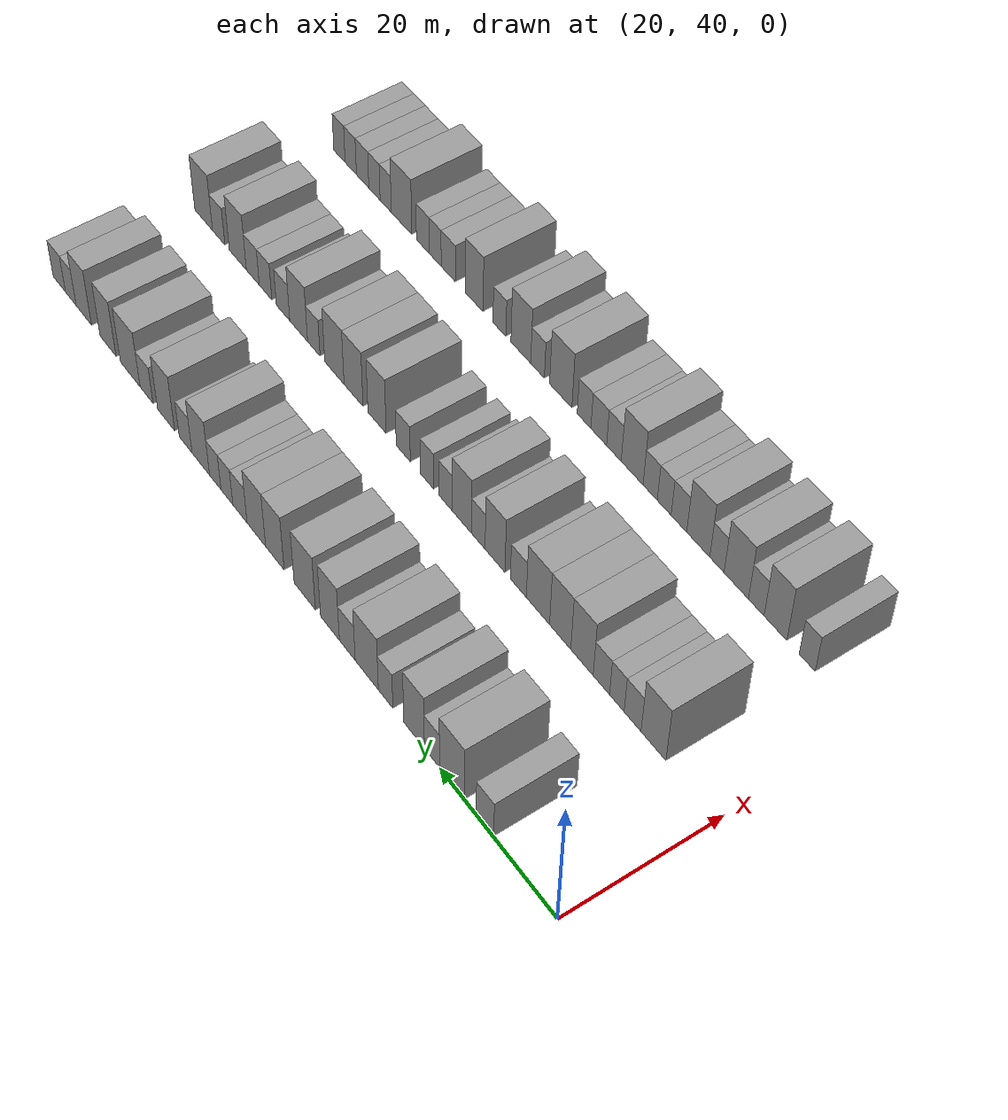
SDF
<sdf version="1.6">
 <world name="default">
  <model name="building_74">
   <static>1</static>
   <pose>25.0000 52.1998 0 0.000000 0.000000 0.000000</pose>
   <link name="link">
    <pose>0 0 3.00 0 0 0</pose>
    <collision name="collision"><geometry><box><size>10.0000 2.9904 6.0000</size></box></geometry></collision>
    <visual name="visual">
     <cast_shadows>0</cast_shadows>
     <geometry><box><size>10.0000 2.9904 6.0000</size></box></geometry>
     <material>
      <script>
       <uri>model://grey_wall/materials/scripts</uri>
       <uri>model://grey_wall/materials/textures</uri>
       <name>vrc/grey_wall</name>
      </script>
     </material>
    </visual>
   </link>
  </model>
  <model name="building_75">
   <static>1</static>
   <pose>25.0000 57.8810 0 0.000000 0.000000 0.000000</pose>
   <link name="link">
    <pose>0 0 4.50 0 0 0</pose>
    <collision name="collision"><geometry><box><size>10.0000 4.3721 9.0000</size></box></geometry></collision>
    <visual name="visual">
     <cast_shadows>0</cast_shadows>
     <geometry><box><size>10.0000 4.3721 9.0000</size></box></geometry>
     <material>
      <script>
       <uri>model://grey_wall/materials/scripts</uri>
       <uri>model://grey_wall/materials/textures</uri>
       <name>vrc/grey_wall</name>
      </script>
     </material>
    </visual>
   </link>
  </model>
  <model name="building_76">
   <static>1</static>
   <pose>25.0000 61.4075 0 0.000000 0.000000 0.000000</pose>
   <link name="link">
    <pose>0 0 3.00 0 0 0</pose>
    <collision name="collision"><geometry><box><size>10.0000 2.6810 6.0000</size></box></geometry></collision>
    <visual name="visual">
     <cast_shadows>0</cast_shadows>
     <geometry><box><size>10.0000 2.6810 6.0000</size></box></geometry>
     <material>
      <script>
       <uri>model://grey_wall/materials/scripts</uri>
       <uri>model://grey_wall/materials/textures</uri>
       <name>vrc/grey_wall</name>
      </script>
     </material>
    </visual>
   </link>
  </model>
  <model name="building_77">
   <static>1</static>
   <pose>25.0000 64.5982 0 0.000000 0.000000 0.000000</pose>
   <link name="link">
    <pose>0 0 4.50 0 0 0</pose>
    <collision name="collision"><geometry><box><size>10.0000 3.7004 9.0000</size></box></geometry></collision>
    <visual name="visual">
     <cast_shadows>0</cast_shadows>
     <geometry><box><size>10.0000 3.7004 9.0000</size></box></geometry>
     <material>
      <script>
       <uri>model://grey_wall/materials/scripts</uri>
       <uri>model://grey_wall/materials/textures</uri>
       <name>vrc/grey_wall</name>
      </script>
     </material>
    </visual>
   </link>
  </model>
  <model name="building_78">
   <static>1</static>
   <pose>25.0000 69.7777 0 0.000000 0.000000 0.000000</pose>
   <link name="link">
    <pose>0 0 3.00 0 0 0</pose>
    <collision name="collision"><geometry><box><size>10.0000 2.6587 6.0000</size></box></geometry></collision>
    <visual name="visual">
     <cast_shadows>0</cast_shadows>
     <geometry><box><size>10.0000 2.6587 6.0000</size></box></geometry>
     <material>
      <script>
       <uri>model://grey_wall/materials/scripts</uri>
       <uri>model://grey_wall/materials/textures</uri>
       <name>vrc/grey_wall</name>
      </script>
     </material>
    </visual>
   </link>
  </model>
  <model name="building_79">
   <static>1</static>
   <pose>25.0000 73.2680 0 0.000000 0.000000 0.000000</pose>
   <link name="link">
    <pose>0 0 4.50 0 0 0</pose>
    <collision name="collision"><geometry><box><size>10.0000 4.3219 9.0000</size></box></geometry></collision>
    <visual name="visual">
     <cast_shadows>0</cast_shadows>
     <geometry><box><size>10.0000 4.3219 9.0000</size></box></geometry>
     <material>
      <script>
       <uri>model://grey_wall/materials/scripts</uri>
       <uri>model://grey_wall/materials/textures</uri>
       <name>vrc/grey_wall</name>
      </script>
     </material>
    </visual>
   </link>
  </model>
  <model name="building_80">
   <static>1</static>
   <pose>25.0000 76.9229 0 0.000000 0.000000 0.000000</pose>
   <link name="link">
    <pose>0 0 3.00 0 0 0</pose>
    <collision name="collision"><geometry><box><size>10.0000 2.9879 6.0000</size></box></geometry></collision>
    <visual name="visual">
     <cast_shadows>0</cast_shadows>
     <geometry><box><size>10.0000 2.9879 6.0000</size></box></geometry>
     <material>
      <script>
       <uri>model://grey_wall/materials/scripts</uri>
       <uri>model://grey_wall/materials/textures</uri>
       <name>vrc/grey_wall</name>
      </script>
     </material>
    </visual>
   </link>
  </model>
  <model name="building_81">
   <static>1</static>
   <pose>25.0000 80.2235 0 0.000000 0.000000 0.000000</pose>
   <link name="link">
    <pose>0 0 4.50 0 0 0</pose>
    <collision name="collision"><geometry><box><size>10.0000 3.6132 9.0000</size></box></geometry></collision>
    <visual name="visual">
     <cast_shadows>0</cast_shadows>
     <geometry><box><size>10.0000 3.6132 9.0000</size></box></geometry>
     <material>
      <script>
       <uri>model://grey_wall/materials/scripts</uri>
       <uri>model://grey_wall/materials/textures</uri>
       <name>vrc/grey_wall</name>
      </script>
     </material>
    </visual>
   </link>
  </model>
  <model name="building_82">
   <static>1</static>
   <pose>25.0000 85.1153 0 0.000000 0.000000 0.000000</pose>
   <link name="link">
    <pose>0 0 4.50 0 0 0</pose>
    <collision name="collision"><geometry><box><size>10.0000 4.1705 9.0000</size></box></geometry></collision>
    <visual name="visual">
     <cast_shadows>0</cast_shadows>
     <geometry><box><size>10.0000 4.1705 9.0000</size></box></geometry>
     <material>
      <script>
       <uri>model://grey_wall/materials/scripts</uri>
       <uri>model://grey_wall/materials/textures</uri>
       <name>vrc/grey_wall</name>
      </script>
     </material>
    </visual>
   </link>
  </model>
  <model name="building_83">
   <static>1</static>
   <pose>25.0000 91.0517 0 0.000000 0.000000 0.000000</pose>
   <link name="link">
    <pose>0 0 4.50 0 0 0</pose>
    <collision name="collision"><geometry><box><size>10.0000 3.7021 9.0000</size></box></geometry></collision>
    <visual name="visual">
     <cast_shadows>0</cast_shadows>
     <geometry><box><size>10.0000 3.7021 9.0000</size></box></geometry>
     <material>
      <script>
       <uri>model://grey_wall/materials/scripts</uri>
       <uri>model://grey_wall/materials/textures</uri>
       <name>vrc/grey_wall</name>
      </script>
     </material>
    </visual>
   </link>
  </model>
  <model name="building_84">
   <static>1</static>
   <pose>25.0000 94.7912 0 0.000000 0.000000 0.000000</pose>
   <link name="link">
    <pose>0 0 4.50 0 0 0</pose>
    <collision name="collision"><geometry><box><size>10.0000 3.7769 9.0000</size></box></geometry></collision>
    <visual name="visual">
     <cast_shadows>0</cast_shadows>
     <geometry><box><size>10.0000 3.7769 9.0000</size></box></geometry>
     <material>
      <script>
       <uri>model://grey_wall/materials/scripts</uri>
       <uri>model://grey_wall/materials/textures</uri>
       <name>vrc/grey_wall</name>
      </script>
     </material>
    </visual>
   </link>
  </model>
  <model name="building_85">
   <static>1</static>
   <pose>25.0000 98.1392 0 0.000000 0.000000 0.000000</pose>
   <link name="link">
    <pose>0 0 3.00 0 0 0</pose>
    <collision name="collision"><geometry><box><size>10.0000 2.9192 6.0000</size></box></geometry></collision>
    <visual name="visual">
     <cast_shadows>0</cast_shadows>
     <geometry><box><size>10.0000 2.9192 6.0000</size></box></geometry>
     <material>
      <script>
       <uri>model://grey_wall/materials/scripts</uri>
       <uri>model://grey_wall/materials/textures</uri>
       <name>vrc/grey_wall</name>
      </script>
     </material>
    </visual>
   </link>
  </model>
  <model name="building_86">
   <static>1</static>
   <pose>25.0000 100.8425 0 0.000000 0.000000 0.000000</pose>
   <link name="link">
    <pose>0 0 3.00 0 0 0</pose>
    <collision name="collision"><geometry><box><size>10.0000 2.4873 6.0000</size></box></geometry></collision>
    <visual name="visual">
     <cast_shadows>0</cast_shadows>
     <geometry><box><size>10.0000 2.4873 6.0000</size></box></geometry>
     <material>
      <script>
       <uri>model://grey_wall/materials/scripts</uri>
       <uri>model://grey_wall/materials/textures</uri>
       <name>vrc/grey_wall</name>
      </script>
     </material>
    </visual>
   </link>
  </model>
  <model name="building_87">
   <static>1</static>
   <pose>25.0000 103.2883 0 0.000000 0.000000 0.000000</pose>
   <link name="link">
    <pose>0 0 3.00 0 0 0</pose>
    <collision name="collision"><geometry><box><size>10.0000 2.4044 6.0000</size></box></geometry></collision>
    <visual name="visual">
     <cast_shadows>0</cast_shadows>
     <geometry><box><size>10.0000 2.4044 6.0000</size></box></geometry>
     <material>
      <script>
       <uri>model://grey_wall/materials/scripts</uri>
       <uri>model://grey_wall/materials/textures</uri>
       <name>vrc/grey_wall</name>
      </script>
     </material>
    </visual>
   </link>
  </model>
  <model name="building_88">
   <static>1</static>
   <pose>25.0000 106.3602 0 0.000000 0.000000 0.000000</pose>
   <link name="link">
    <pose>0 0 4.50 0 0 0</pose>
    <collision name="collision"><geometry><box><size>10.0000 3.7394 9.0000</size></box></geometry></collision>
    <visual name="visual">
     <cast_shadows>0</cast_shadows>
     <geometry><box><size>10.0000 3.7394 9.0000</size></box></geometry>
     <material>
      <script>
       <uri>model://grey_wall/materials/scripts</uri>
       <uri>model://grey_wall/materials/textures</uri>
       <name>vrc/grey_wall</name>
      </script>
     </material>
    </visual>
   </link>
  </model>
  <model name="building_89">
   <static>1</static>
   <pose>25.0000 109.6116 0 0.000000 0.000000 0.000000</pose>
   <link name="link">
    <pose>0 0 3.00 0 0 0</pose>
    <collision name="collision"><geometry><box><size>10.0000 2.7633 6.0000</size></box></geometry></collision>
    <visual name="visual">
     <cast_shadows>0</cast_shadows>
     <geometry><box><size>10.0000 2.7633 6.0000</size></box></geometry>
     <material>
      <script>
       <uri>model://grey_wall/materials/scripts</uri>
       <uri>model://grey_wall/materials/textures</uri>
       <name>vrc/grey_wall</name>
      </script>
     </material>
    </visual>
   </link>
  </model>
  <model name="building_90">
   <static>1</static>
   <pose>25.0000 113.8682 0 0.000000 0.000000 0.000000</pose>
   <link name="link">
    <pose>0 0 4.50 0 0 0</pose>
    <collision name="collision"><geometry><box><size>10.0000 3.7500 9.0000</size></box></geometry></collision>
    <visual name="visual">
     <cast_shadows>0</cast_shadows>
     <geometry><box><size>10.0000 3.7500 9.0000</size></box></geometry>
     <material>
      <script>
       <uri>model://grey_wall/materials/scripts</uri>
       <uri>model://grey_wall/materials/textures</uri>
       <name>vrc/grey_wall</name>
      </script>
     </material>
    </visual>
   </link>
  </model>
  <model name="building_91">
   <static>1</static>
   <pose>25.0000 118.1881 0 0.000000 0.000000 0.000000</pose>
   <link name="link">
    <pose>0 0 3.00 0 0 0</pose>
    <collision name="collision"><geometry><box><size>10.0000 2.8897 6.0000</size></box></geometry></collision>
    <visual name="visual">
     <cast_shadows>0</cast_shadows>
     <geometry><box><size>10.0000 2.8897 6.0000</size></box></geometry>
     <material>
      <script>
       <uri>model://grey_wall/materials/scripts</uri>
       <uri>model://grey_wall/materials/textures</uri>
       <name>vrc/grey_wall</name>
      </script>
     </material>
    </visual>
   </link>
  </model>
  <model name="building_92">
   <static>1</static>
   <pose>25.0000 121.8545 0 0.000000 0.000000 0.000000</pose>
   <link name="link">
    <pose>0 0 4.50 0 0 0</pose>
    <collision name="collision"><geometry><box><size>10.0000 4.4433 9.0000</size></box></geometry></collision>
    <visual name="visual">
     <cast_shadows>0</cast_shadows>
     <geometry><box><size>10.0000 4.4433 9.0000</size></box></geometry>
     <material>
      <script>
       <uri>model://grey_wall/materials/scripts</uri>
       <uri>model://grey_wall/materials/textures</uri>
       <name>vrc/grey_wall</name>
      </script>
     </material>
    </visual>
   </link>
  </model>
  <model name="building_93">
   <static>1</static>
   <pose>25.0000 126.9048 0 0.000000 0.000000 0.000000</pose>
   <link name="link">
    <pose>0 0 4.50 0 0 0</pose>
    <collision name="collision"><geometry><box><size>10.0000 3.6571 9.0000</size></box></geometry></collision>
    <visual name="visual">
     <cast_shadows>0</cast_shadows>
     <geometry><box><size>10.0000 3.6571 9.0000</size></box></geometry>
     <material>
      <script>
       <uri>model://grey_wall/materials/scripts</uri>
       <uri>model://grey_wall/materials/textures</uri>
       <name>vrc/grey_wall</name>
      </script>
     </material>
    </visual>
   </link>
  </model>
  <model name="building_94">
   <static>1</static>
   <pose>25.0000 132.5407 0 0.000000 0.000000 0.000000</pose>
   <link name="link">
    <pose>0 0 4.50 0 0 0</pose>
    <collision name="collision"><geometry><box><size>10.0000 3.6147 9.0000</size></box></geometry></collision>
    <visual name="visual">
     <cast_shadows>0</cast_shadows>
     <geometry><box><size>10.0000 3.6147 9.0000</size></box></geometry>
     <material>
      <script>
       <uri>model://grey_wall/materials/scripts</uri>
       <uri>model://grey_wall/materials/textures</uri>
       <name>vrc/grey_wall</name>
      </script>
     </material>
    </visual>
   </link>
  </model>
  <model name="building_95">
   <static>1</static>
   <pose>25.0000 135.6192 0 0.000000 0.000000 0.000000</pose>
   <link name="link">
    <pose>0 0 3.00 0 0 0</pose>
    <collision name="collision"><geometry><box><size>10.0000 2.5423 6.0000</size></box></geometry></collision>
    <visual name="visual">
     <cast_shadows>0</cast_shadows>
     <geometry><box><size>10.0000 2.5423 6.0000</size></box></geometry>
     <material>
      <script>
       <uri>model://grey_wall/materials/scripts</uri>
       <uri>model://grey_wall/materials/textures</uri>
       <name>vrc/grey_wall</name>
      </script>
     </material>
    </visual>
   </link>
  </model>
  <model name="building_96">
   <static>1</static>
   <pose>25.0000 138.3678 0 0.000000 0.000000 0.000000</pose>
   <link name="link">
    <pose>0 0 3.00 0 0 0</pose>
    <collision name="collision"><geometry><box><size>10.0000 2.9550 6.0000</size></box></geometry></collision>
    <visual name="visual">
     <cast_shadows>0</cast_shadows>
     <geometry><box><size>10.0000 2.9550 6.0000</size></box></geometry>
     <material>
      <script>
       <uri>model://grey_wall/materials/scripts</uri>
       <uri>model://grey_wall/materials/textures</uri>
       <name>vrc/grey_wall</name>
      </script>
     </material>
    </visual>
   </link>
  </model>
  <model name="building_199">
   <static>1</static>
   <pose>44.0000 50.1903 0 0.000000 0.000000 0.000000</pose>
   <link name="link">
    <pose>0 0 4.50 0 0 0</pose>
    <collision name="collision"><geometry><box><size>10.0000 4.1008 9.0000</size></box></geometry></collision>
    <visual name="visual">
     <cast_shadows>0</cast_shadows>
     <geometry><box><size>10.0000 4.1008 9.0000</size></box></geometry>
     <material>
      <script>
       <uri>model://grey_wall/materials/scripts</uri>
       <uri>model://grey_wall/materials/textures</uri>
       <name>vrc/grey_wall</name>
      </script>
     </material>
    </visual>
   </link>
  </model>
  <model name="building_200">
   <static>1</static>
   <pose>44.0000 53.6527 0 0.000000 0.000000 0.000000</pose>
   <link name="link">
    <pose>0 0 3.00 0 0 0</pose>
    <collision name="collision"><geometry><box><size>10.0000 2.8241 6.0000</size></box></geometry></collision>
    <visual name="visual">
     <cast_shadows>0</cast_shadows>
     <geometry><box><size>10.0000 2.8241 6.0000</size></box></geometry>
     <material>
      <script>
       <uri>model://grey_wall/materials/scripts</uri>
       <uri>model://grey_wall/materials/textures</uri>
       <name>vrc/grey_wall</name>
      </script>
     </material>
    </visual>
   </link>
  </model>
  <model name="building_201">
   <static>1</static>
   <pose>44.0000 56.2952 0 0.000000 0.000000 0.000000</pose>
   <link name="link">
    <pose>0 0 3.00 0 0 0</pose>
    <collision name="collision"><geometry><box><size>10.0000 2.4609 6.0000</size></box></geometry></collision>
    <visual name="visual">
     <cast_shadows>0</cast_shadows>
     <geometry><box><size>10.0000 2.4609 6.0000</size></box></geometry>
     <material>
      <script>
       <uri>model://grey_wall/materials/scripts</uri>
       <uri>model://grey_wall/materials/textures</uri>
       <name>vrc/grey_wall</name>
      </script>
     </material>
    </visual>
   </link>
  </model>
  <model name="building_202">
   <static>1</static>
   <pose>44.0000 58.9181 0 0.000000 0.000000 0.000000</pose>
   <link name="link">
    <pose>0 0 3.00 0 0 0</pose>
    <collision name="collision"><geometry><box><size>10.0000 2.7849 6.0000</size></box></geometry></collision>
    <visual name="visual">
     <cast_shadows>0</cast_shadows>
     <geometry><box><size>10.0000 2.7849 6.0000</size></box></geometry>
     <material>
      <script>
       <uri>model://grey_wall/materials/scripts</uri>
       <uri>model://grey_wall/materials/textures</uri>
       <name>vrc/grey_wall</name>
      </script>
     </material>
    </visual>
   </link>
  </model>
  <model name="building_203">
   <static>1</static>
   <pose>44.0000 62.2452 0 0.000000 0.000000 0.000000</pose>
   <link name="link">
    <pose>0 0 4.50 0 0 0</pose>
    <collision name="collision"><geometry><box><size>10.0000 3.8692 9.0000</size></box></geometry></collision>
    <visual name="visual">
     <cast_shadows>0</cast_shadows>
     <geometry><box><size>10.0000 3.8692 9.0000</size></box></geometry>
     <material>
      <script>
       <uri>model://grey_wall/materials/scripts</uri>
       <uri>model://grey_wall/materials/textures</uri>
       <name>vrc/grey_wall</name>
      </script>
     </material>
    </visual>
   </link>
  </model>
  <model name="building_204">
   <static>1</static>
   <pose>44.0000 66.0478 0 0.000000 0.000000 0.000000</pose>
   <link name="link">
    <pose>0 0 4.50 0 0 0</pose>
    <collision name="collision"><geometry><box><size>10.0000 3.7361 9.0000</size></box></geometry></collision>
    <visual name="visual">
     <cast_shadows>0</cast_shadows>
     <geometry><box><size>10.0000 3.7361 9.0000</size></box></geometry>
     <material>
      <script>
       <uri>model://grey_wall/materials/scripts</uri>
       <uri>model://grey_wall/materials/textures</uri>
       <name>vrc/grey_wall</name>
      </script>
     </material>
    </visual>
   </link>
  </model>
  <model name="building_205">
   <static>1</static>
   <pose>44.0000 69.9916 0 0.000000 0.000000 0.000000</pose>
   <link name="link">
    <pose>0 0 4.50 0 0 0</pose>
    <collision name="collision"><geometry><box><size>10.0000 4.1514 9.0000</size></box></geometry></collision>
    <visual name="visual">
     <cast_shadows>0</cast_shadows>
     <geometry><box><size>10.0000 4.1514 9.0000</size></box></geometry>
     <material>
      <script>
       <uri>model://grey_wall/materials/scripts</uri>
       <uri>model://grey_wall/materials/textures</uri>
       <name>vrc/grey_wall</name>
      </script>
     </material>
    </visual>
   </link>
  </model>
  <model name="building_206">
   <static>1</static>
   <pose>44.0000 73.5142 0 0.000000 0.000000 0.000000</pose>
   <link name="link">
    <pose>0 0 3.00 0 0 0</pose>
    <collision name="collision"><geometry><box><size>10.0000 2.8937 6.0000</size></box></geometry></collision>
    <visual name="visual">
     <cast_shadows>0</cast_shadows>
     <geometry><box><size>10.0000 2.8937 6.0000</size></box></geometry>
     <material>
      <script>
       <uri>model://grey_wall/materials/scripts</uri>
       <uri>model://grey_wall/materials/textures</uri>
       <name>vrc/grey_wall</name>
      </script>
     </material>
    </visual>
   </link>
  </model>
  <model name="building_207">
   <static>1</static>
   <pose>44.0000 77.7868 0 0.000000 0.000000 0.000000</pose>
   <link name="link">
    <pose>0 0 4.50 0 0 0</pose>
    <collision name="collision"><geometry><box><size>10.0000 3.6514 9.0000</size></box></geometry></collision>
    <visual name="visual">
     <cast_shadows>0</cast_shadows>
     <geometry><box><size>10.0000 3.6514 9.0000</size></box></geometry>
     <material>
      <script>
       <uri>model://grey_wall/materials/scripts</uri>
       <uri>model://grey_wall/materials/textures</uri>
       <name>vrc/grey_wall</name>
      </script>
     </material>
    </visual>
   </link>
  </model>
  <model name="building_208">
   <static>1</static>
   <pose>44.0000 80.8867 0 0.000000 0.000000 0.000000</pose>
   <link name="link">
    <pose>0 0 3.00 0 0 0</pose>
    <collision name="collision"><geometry><box><size>10.0000 2.5484 6.0000</size></box></geometry></collision>
    <visual name="visual">
     <cast_shadows>0</cast_shadows>
     <geometry><box><size>10.0000 2.5484 6.0000</size></box></geometry>
     <material>
      <script>
       <uri>model://grey_wall/materials/scripts</uri>
       <uri>model://grey_wall/materials/textures</uri>
       <name>vrc/grey_wall</name>
      </script>
     </material>
    </visual>
   </link>
  </model>
  <model name="building_209">
   <static>1</static>
   <pose>44.0000 83.9842 0 0.000000 0.000000 0.000000</pose>
   <link name="link">
    <pose>0 0 4.50 0 0 0</pose>
    <collision name="collision"><geometry><box><size>10.0000 3.6467 9.0000</size></box></geometry></collision>
    <visual name="visual">
     <cast_shadows>0</cast_shadows>
     <geometry><box><size>10.0000 3.6467 9.0000</size></box></geometry>
     <material>
      <script>
       <uri>model://grey_wall/materials/scripts</uri>
       <uri>model://grey_wall/materials/textures</uri>
       <name>vrc/grey_wall</name>
      </script>
     </material>
    </visual>
   </link>
  </model>
  <model name="building_210">
   <static>1</static>
   <pose>44.0000 87.0691 0 0.000000 0.000000 0.000000</pose>
   <link name="link">
    <pose>0 0 3.00 0 0 0</pose>
    <collision name="collision"><geometry><box><size>10.0000 2.5231 6.0000</size></box></geometry></collision>
    <visual name="visual">
     <cast_shadows>0</cast_shadows>
     <geometry><box><size>10.0000 2.5231 6.0000</size></box></geometry>
     <material>
      <script>
       <uri>model://grey_wall/materials/scripts</uri>
       <uri>model://grey_wall/materials/textures</uri>
       <name>vrc/grey_wall</name>
      </script>
     </material>
    </visual>
   </link>
  </model>
  <model name="building_211">
   <static>1</static>
   <pose>44.0000 90.6035 0 0.000000 0.000000 0.000000</pose>
   <link name="link">
    <pose>0 0 3.00 0 0 0</pose>
    <collision name="collision"><geometry><box><size>10.0000 2.5456 6.0000</size></box></geometry></collision>
    <visual name="visual">
     <cast_shadows>0</cast_shadows>
     <geometry><box><size>10.0000 2.5456 6.0000</size></box></geometry>
     <material>
      <script>
       <uri>model://grey_wall/materials/scripts</uri>
       <uri>model://grey_wall/materials/textures</uri>
       <name>vrc/grey_wall</name>
      </script>
     </material>
    </visual>
   </link>
  </model>
  <model name="building_212">
   <static>1</static>
   <pose>44.0000 95.2691 0 0.000000 0.000000 0.000000</pose>
   <link name="link">
    <pose>0 0 3.00 0 0 0</pose>
    <collision name="collision"><geometry><box><size>10.0000 2.7858 6.0000</size></box></geometry></collision>
    <visual name="visual">
     <cast_shadows>0</cast_shadows>
     <geometry><box><size>10.0000 2.7858 6.0000</size></box></geometry>
     <material>
      <script>
       <uri>model://grey_wall/materials/scripts</uri>
       <uri>model://grey_wall/materials/textures</uri>
       <name>vrc/grey_wall</name>
      </script>
     </material>
    </visual>
   </link>
  </model>
  <model name="building_213">
   <static>1</static>
   <pose>44.0000 100.4918 0 0.000000 0.000000 0.000000</pose>
   <link name="link">
    <pose>0 0 4.50 0 0 0</pose>
    <collision name="collision"><geometry><box><size>10.0000 3.6594 9.0000</size></box></geometry></collision>
    <visual name="visual">
     <cast_shadows>0</cast_shadows>
     <geometry><box><size>10.0000 3.6594 9.0000</size></box></geometry>
     <material>
      <script>
       <uri>model://grey_wall/materials/scripts</uri>
       <uri>model://grey_wall/materials/textures</uri>
       <name>vrc/grey_wall</name>
      </script>
     </material>
    </visual>
   </link>
  </model>
  <model name="building_214">
   <static>1</static>
   <pose>44.0000 105.2656 0 0.000000 0.000000 0.000000</pose>
   <link name="link">
    <pose>0 0 4.50 0 0 0</pose>
    <collision name="collision"><geometry><box><size>10.0000 3.8883 9.0000</size></box></geometry></collision>
    <visual name="visual">
     <cast_shadows>0</cast_shadows>
     <geometry><box><size>10.0000 3.8883 9.0000</size></box></geometry>
     <material>
      <script>
       <uri>model://grey_wall/materials/scripts</uri>
       <uri>model://grey_wall/materials/textures</uri>
       <name>vrc/grey_wall</name>
      </script>
     </material>
    </visual>
   </link>
  </model>
  <model name="building_215">
   <static>1</static>
   <pose>44.0000 109.2151 0 0.000000 0.000000 0.000000</pose>
   <link name="link">
    <pose>0 0 4.50 0 0 0</pose>
    <collision name="collision"><geometry><box><size>10.0000 4.0106 9.0000</size></box></geometry></collision>
    <visual name="visual">
     <cast_shadows>0</cast_shadows>
     <geometry><box><size>10.0000 4.0106 9.0000</size></box></geometry>
     <material>
      <script>
       <uri>model://grey_wall/materials/scripts</uri>
       <uri>model://grey_wall/materials/textures</uri>
       <name>vrc/grey_wall</name>
      </script>
     </material>
    </visual>
   </link>
  </model>
  <model name="building_216">
   <static>1</static>
   <pose>44.0000 113.5336 0 0.000000 0.000000 0.000000</pose>
   <link name="link">
    <pose>0 0 3.00 0 0 0</pose>
    <collision name="collision"><geometry><box><size>10.0000 2.6264 6.0000</size></box></geometry></collision>
    <visual name="visual">
     <cast_shadows>0</cast_shadows>
     <geometry><box><size>10.0000 2.6264 6.0000</size></box></geometry>
     <material>
      <script>
       <uri>model://grey_wall/materials/scripts</uri>
       <uri>model://grey_wall/materials/textures</uri>
       <name>vrc/grey_wall</name>
      </script>
     </material>
    </visual>
   </link>
  </model>
  <model name="building_217">
   <static>1</static>
   <pose>44.0000 116.7589 0 0.000000 0.000000 0.000000</pose>
   <link name="link">
    <pose>0 0 4.50 0 0 0</pose>
    <collision name="collision"><geometry><box><size>10.0000 3.8242 9.0000</size></box></geometry></collision>
    <visual name="visual">
     <cast_shadows>0</cast_shadows>
     <geometry><box><size>10.0000 3.8242 9.0000</size></box></geometry>
     <material>
      <script>
       <uri>model://grey_wall/materials/scripts</uri>
       <uri>model://grey_wall/materials/textures</uri>
       <name>vrc/grey_wall</name>
      </script>
     </material>
    </visual>
   </link>
  </model>
  <model name="building_218">
   <static>1</static>
   <pose>44.0000 120.1202 0 0.000000 0.000000 0.000000</pose>
   <link name="link">
    <pose>0 0 3.00 0 0 0</pose>
    <collision name="collision"><geometry><box><size>10.0000 2.8983 6.0000</size></box></geometry></collision>
    <visual name="visual">
     <cast_shadows>0</cast_shadows>
     <geometry><box><size>10.0000 2.8983 6.0000</size></box></geometry>
     <material>
      <script>
       <uri>model://grey_wall/materials/scripts</uri>
       <uri>model://grey_wall/materials/textures</uri>
       <name>vrc/grey_wall</name>
      </script>
     </material>
    </visual>
   </link>
  </model>
  <model name="building_219">
   <static>1</static>
   <pose>44.0000 123.9410 0 0.000000 0.000000 0.000000</pose>
   <link name="link">
    <pose>0 0 3.00 0 0 0</pose>
    <collision name="collision"><geometry><box><size>10.0000 2.7435 6.0000</size></box></geometry></collision>
    <visual name="visual">
     <cast_shadows>0</cast_shadows>
     <geometry><box><size>10.0000 2.7435 6.0000</size></box></geometry>
     <material>
      <script>
       <uri>model://grey_wall/materials/scripts</uri>
       <uri>model://grey_wall/materials/textures</uri>
       <name>vrc/grey_wall</name>
      </script>
     </material>
    </visual>
   </link>
  </model>
  <model name="building_220">
   <static>1</static>
   <pose>44.0000 126.7557 0 0.000000 0.000000 0.000000</pose>
   <link name="link">
    <pose>0 0 3.00 0 0 0</pose>
    <collision name="collision"><geometry><box><size>10.0000 2.8858 6.0000</size></box></geometry></collision>
    <visual name="visual">
     <cast_shadows>0</cast_shadows>
     <geometry><box><size>10.0000 2.8858 6.0000</size></box></geometry>
     <material>
      <script>
       <uri>model://grey_wall/materials/scripts</uri>
       <uri>model://grey_wall/materials/textures</uri>
       <name>vrc/grey_wall</name>
      </script>
     </material>
    </visual>
   </link>
  </model>
  <model name="building_221">
   <static>1</static>
   <pose>44.0000 130.1122 0 0.000000 0.000000 0.000000</pose>
   <link name="link">
    <pose>0 0 4.50 0 0 0</pose>
    <collision name="collision"><geometry><box><size>10.0000 3.8272 9.0000</size></box></geometry></collision>
    <visual name="visual">
     <cast_shadows>0</cast_shadows>
     <geometry><box><size>10.0000 3.8272 9.0000</size></box></geometry>
     <material>
      <script>
       <uri>model://grey_wall/materials/scripts</uri>
       <uri>model://grey_wall/materials/textures</uri>
       <name>vrc/grey_wall</name>
      </script>
     </material>
    </visual>
   </link>
  </model>
  <model name="building_222">
   <static>1</static>
   <pose>44.0000 134.4414 0 0.000000 0.000000 0.000000</pose>
   <link name="link">
    <pose>0 0 3.00 0 0 0</pose>
    <collision name="collision"><geometry><box><size>10.0000 2.8314 6.0000</size></box></geometry></collision>
    <visual name="visual">
     <cast_shadows>0</cast_shadows>
     <geometry><box><size>10.0000 2.8314 6.0000</size></box></geometry>
     <material>
      <script>
       <uri>model://grey_wall/materials/scripts</uri>
       <uri>model://grey_wall/materials/textures</uri>
       <name>vrc/grey_wall</name>
      </script>
     </material>
    </visual>
   </link>
  </model>
  <model name="building_223">
   <static>1</static>
   <pose>44.0000 137.8896 0 0.000000 0.000000 0.000000</pose>
   <link name="link">
    <pose>0 0 4.50 0 0 0</pose>
    <collision name="collision"><geometry><box><size>10.0000 4.0649 9.0000</size></box></geometry></collision>
    <visual name="visual">
     <cast_shadows>0</cast_shadows>
     <geometry><box><size>10.0000 4.0649 9.0000</size></box></geometry>
     <material>
      <script>
       <uri>model://grey_wall/materials/scripts</uri>
       <uri>model://grey_wall/materials/textures</uri>
       <name>vrc/grey_wall</name>
      </script>
     </material>
    </visual>
   </link>
  </model>
  <model name="building_326">
   <static>1</static>
   <pose>63.0000 49.3329 0 0.000000 0.000000 0.000000</pose>
   <link name="link">
    <pose>0 0 3.00 0 0 0</pose>
    <collision name="collision"><geometry><box><size>10.0000 2.5705 6.0000</size></box></geometry></collision>
    <visual name="visual">
     <cast_shadows>0</cast_shadows>
     <geometry><box><size>10.0000 2.5705 6.0000</size></box></geometry>
     <material>
      <script>
       <uri>model://grey_wall/materials/scripts</uri>
       <uri>model://grey_wall/materials/textures</uri>
       <name>vrc/grey_wall</name>
      </script>
     </material>
    </visual>
   </link>
  </model>
  <model name="building_327">
   <static>1</static>
   <pose>63.0000 54.4818 0 0.000000 0.000000 0.000000</pose>
   <link name="link">
    <pose>0 0 4.50 0 0 0</pose>
    <collision name="collision"><geometry><box><size>10.0000 3.7273 9.0000</size></box></geometry></collision>
    <visual name="visual">
     <cast_shadows>0</cast_shadows>
     <geometry><box><size>10.0000 3.7273 9.0000</size></box></geometry>
     <material>
      <script>
       <uri>model://grey_wall/materials/scripts</uri>
       <uri>model://grey_wall/materials/textures</uri>
       <name>vrc/grey_wall</name>
      </script>
     </material>
    </visual>
   </link>
  </model>
  <model name="building_328">
   <static>1</static>
   <pose>63.0000 57.6375 0 0.000000 0.000000 0.000000</pose>
   <link name="link">
    <pose>0 0 3.00 0 0 0</pose>
    <collision name="collision"><geometry><box><size>10.0000 2.5842 6.0000</size></box></geometry></collision>
    <visual name="visual">
     <cast_shadows>0</cast_shadows>
     <geometry><box><size>10.0000 2.5842 6.0000</size></box></geometry>
     <material>
      <script>
       <uri>model://grey_wall/materials/scripts</uri>
       <uri>model://grey_wall/materials/textures</uri>
       <name>vrc/grey_wall</name>
      </script>
     </material>
    </visual>
   </link>
  </model>
  <model name="building_329">
   <static>1</static>
   <pose>63.0000 60.9789 0 0.000000 0.000000 0.000000</pose>
   <link name="link">
    <pose>0 0 4.50 0 0 0</pose>
    <collision name="collision"><geometry><box><size>10.0000 4.0987 9.0000</size></box></geometry></collision>
    <visual name="visual">
     <cast_shadows>0</cast_shadows>
     <geometry><box><size>10.0000 4.0987 9.0000</size></box></geometry>
     <material>
      <script>
       <uri>model://grey_wall/materials/scripts</uri>
       <uri>model://grey_wall/materials/textures</uri>
       <name>vrc/grey_wall</name>
      </script>
     </material>
    </visual>
   </link>
  </model>
  <model name="building_330">
   <static>1</static>
   <pose>63.0000 64.2439 0 0.000000 0.000000 0.000000</pose>
   <link name="link">
    <pose>0 0 3.00 0 0 0</pose>
    <collision name="collision"><geometry><box><size>10.0000 2.4312 6.0000</size></box></geometry></collision>
    <visual name="visual">
     <cast_shadows>0</cast_shadows>
     <geometry><box><size>10.0000 2.4312 6.0000</size></box></geometry>
     <material>
      <script>
       <uri>model://grey_wall/materials/scripts</uri>
       <uri>model://grey_wall/materials/textures</uri>
       <name>vrc/grey_wall</name>
      </script>
     </material>
    </visual>
   </link>
  </model>
  <model name="building_331">
   <static>1</static>
   <pose>63.0000 67.4491 0 0.000000 0.000000 0.000000</pose>
   <link name="link">
    <pose>0 0 4.50 0 0 0</pose>
    <collision name="collision"><geometry><box><size>10.0000 3.9792 9.0000</size></box></geometry></collision>
    <visual name="visual">
     <cast_shadows>0</cast_shadows>
     <geometry><box><size>10.0000 3.9792 9.0000</size></box></geometry>
     <material>
      <script>
       <uri>model://grey_wall/materials/scripts</uri>
       <uri>model://grey_wall/materials/textures</uri>
       <name>vrc/grey_wall</name>
      </script>
     </material>
    </visual>
   </link>
  </model>
  <model name="building_332">
   <static>1</static>
   <pose>63.0000 70.7961 0 0.000000 0.000000 0.000000</pose>
   <link name="link">
    <pose>0 0 3.00 0 0 0</pose>
    <collision name="collision"><geometry><box><size>10.0000 2.7147 6.0000</size></box></geometry></collision>
    <visual name="visual">
     <cast_shadows>0</cast_shadows>
     <geometry><box><size>10.0000 2.7147 6.0000</size></box></geometry>
     <material>
      <script>
       <uri>model://grey_wall/materials/scripts</uri>
       <uri>model://grey_wall/materials/textures</uri>
       <name>vrc/grey_wall</name>
      </script>
     </material>
    </visual>
   </link>
  </model>
  <model name="building_333">
   <static>1</static>
   <pose>63.0000 73.3758 0 0.000000 0.000000 0.000000</pose>
   <link name="link">
    <pose>0 0 3.00 0 0 0</pose>
    <collision name="collision"><geometry><box><size>10.0000 2.4447 6.0000</size></box></geometry></collision>
    <visual name="visual">
     <cast_shadows>0</cast_shadows>
     <geometry><box><size>10.0000 2.4447 6.0000</size></box></geometry>
     <material>
      <script>
       <uri>model://grey_wall/materials/scripts</uri>
       <uri>model://grey_wall/materials/textures</uri>
       <name>vrc/grey_wall</name>
      </script>
     </material>
    </visual>
   </link>
  </model>
  <model name="building_334">
   <static>1</static>
   <pose>63.0000 75.8628 0 0.000000 0.000000 0.000000</pose>
   <link name="link">
    <pose>0 0 3.00 0 0 0</pose>
    <collision name="collision"><geometry><box><size>10.0000 2.5293 6.0000</size></box></geometry></collision>
    <visual name="visual">
     <cast_shadows>0</cast_shadows>
     <geometry><box><size>10.0000 2.5293 6.0000</size></box></geometry>
     <material>
      <script>
       <uri>model://grey_wall/materials/scripts</uri>
       <uri>model://grey_wall/materials/textures</uri>
       <name>vrc/grey_wall</name>
      </script>
     </material>
    </visual>
   </link>
  </model>
  <model name="building_335">
   <static>1</static>
   <pose>63.0000 79.1050 0 0.000000 0.000000 0.000000</pose>
   <link name="link">
    <pose>0 0 4.50 0 0 0</pose>
    <collision name="collision"><geometry><box><size>10.0000 3.9551 9.0000</size></box></geometry></collision>
    <visual name="visual">
     <cast_shadows>0</cast_shadows>
     <geometry><box><size>10.0000 3.9551 9.0000</size></box></geometry>
     <material>
      <script>
       <uri>model://grey_wall/materials/scripts</uri>
       <uri>model://grey_wall/materials/textures</uri>
       <name>vrc/grey_wall</name>
      </script>
     </material>
    </visual>
   </link>
  </model>
  <model name="building_336">
   <static>1</static>
   <pose>63.0000 82.4162 0 0.000000 0.000000 0.000000</pose>
   <link name="link">
    <pose>0 0 3.00 0 0 0</pose>
    <collision name="collision"><geometry><box><size>10.0000 2.6674 6.0000</size></box></geometry></collision>
    <visual name="visual">
     <cast_shadows>0</cast_shadows>
     <geometry><box><size>10.0000 2.6674 6.0000</size></box></geometry>
     <material>
      <script>
       <uri>model://grey_wall/materials/scripts</uri>
       <uri>model://grey_wall/materials/textures</uri>
       <name>vrc/grey_wall</name>
      </script>
     </material>
    </visual>
   </link>
  </model>
  <model name="building_337">
   <static>1</static>
   <pose>63.0000 85.1979 0 0.000000 0.000000 0.000000</pose>
   <link name="link">
    <pose>0 0 3.00 0 0 0</pose>
    <collision name="collision"><geometry><box><size>10.0000 2.8961 6.0000</size></box></geometry></collision>
    <visual name="visual">
     <cast_shadows>0</cast_shadows>
     <geometry><box><size>10.0000 2.8961 6.0000</size></box></geometry>
     <material>
      <script>
       <uri>model://grey_wall/materials/scripts</uri>
       <uri>model://grey_wall/materials/textures</uri>
       <name>vrc/grey_wall</name>
      </script>
     </material>
    </visual>
   </link>
  </model>
  <model name="building_338">
   <static>1</static>
   <pose>63.0000 87.9219 0 0.000000 0.000000 0.000000</pose>
   <link name="link">
    <pose>0 0 3.00 0 0 0</pose>
    <collision name="collision"><geometry><box><size>10.0000 2.5518 6.0000</size></box></geometry></collision>
    <visual name="visual">
     <cast_shadows>0</cast_shadows>
     <geometry><box><size>10.0000 2.5518 6.0000</size></box></geometry>
     <material>
      <script>
       <uri>model://grey_wall/materials/scripts</uri>
       <uri>model://grey_wall/materials/textures</uri>
       <name>vrc/grey_wall</name>
      </script>
     </material>
    </visual>
   </link>
  </model>
  <model name="building_339">
   <static>1</static>
   <pose>63.0000 92.3130 0 0.000000 0.000000 0.000000</pose>
   <link name="link">
    <pose>0 0 4.50 0 0 0</pose>
    <collision name="collision"><geometry><box><size>10.0000 4.2304 9.0000</size></box></geometry></collision>
    <visual name="visual">
     <cast_shadows>0</cast_shadows>
     <geometry><box><size>10.0000 4.2304 9.0000</size></box></geometry>
     <material>
      <script>
       <uri>model://grey_wall/materials/scripts</uri>
       <uri>model://grey_wall/materials/textures</uri>
       <name>vrc/grey_wall</name>
      </script>
     </material>
    </visual>
   </link>
  </model>
  <model name="building_340">
   <static>1</static>
   <pose>63.0000 96.7512 0 0.000000 0.000000 0.000000</pose>
   <link name="link">
    <pose>0 0 3.00 0 0 0</pose>
    <collision name="collision"><geometry><box><size>10.0000 2.6460 6.0000</size></box></geometry></collision>
    <visual name="visual">
     <cast_shadows>0</cast_shadows>
     <geometry><box><size>10.0000 2.6460 6.0000</size></box></geometry>
     <material>
      <script>
       <uri>model://grey_wall/materials/scripts</uri>
       <uri>model://grey_wall/materials/textures</uri>
       <name>vrc/grey_wall</name>
      </script>
     </material>
    </visual>
   </link>
  </model>
  <model name="building_341">
   <static>1</static>
   <pose>63.0000 100.0034 0 0.000000 0.000000 0.000000</pose>
   <link name="link">
    <pose>0 0 4.50 0 0 0</pose>
    <collision name="collision"><geometry><box><size>10.0000 3.8583 9.0000</size></box></geometry></collision>
    <visual name="visual">
     <cast_shadows>0</cast_shadows>
     <geometry><box><size>10.0000 3.8583 9.0000</size></box></geometry>
     <material>
      <script>
       <uri>model://grey_wall/materials/scripts</uri>
       <uri>model://grey_wall/materials/textures</uri>
       <name>vrc/grey_wall</name>
      </script>
     </material>
    </visual>
   </link>
  </model>
  <model name="building_342">
   <static>1</static>
   <pose>63.0000 104.2122 0 0.000000 0.000000 0.000000</pose>
   <link name="link">
    <pose>0 0 3.00 0 0 0</pose>
    <collision name="collision"><geometry><box><size>10.0000 2.5593 6.0000</size></box></geometry></collision>
    <visual name="visual">
     <cast_shadows>0</cast_shadows>
     <geometry><box><size>10.0000 2.5593 6.0000</size></box></geometry>
     <material>
      <script>
       <uri>model://grey_wall/materials/scripts</uri>
       <uri>model://grey_wall/materials/textures</uri>
       <name>vrc/grey_wall</name>
      </script>
     </material>
    </visual>
   </link>
  </model>
  <model name="building_343">
   <static>1</static>
   <pose>63.0000 109.2923 0 0.000000 0.000000 0.000000</pose>
   <link name="link">
    <pose>0 0 4.50 0 0 0</pose>
    <collision name="collision"><geometry><box><size>10.0000 3.6008 9.0000</size></box></geometry></collision>
    <visual name="visual">
     <cast_shadows>0</cast_shadows>
     <geometry><box><size>10.0000 3.6008 9.0000</size></box></geometry>
     <material>
      <script>
       <uri>model://grey_wall/materials/scripts</uri>
       <uri>model://grey_wall/materials/textures</uri>
       <name>vrc/grey_wall</name>
      </script>
     </material>
    </visual>
   </link>
  </model>
  <model name="building_344">
   <static>1</static>
   <pose>63.0000 114.5546 0 0.000000 0.000000 0.000000</pose>
   <link name="link">
    <pose>0 0 3.00 0 0 0</pose>
    <collision name="collision"><geometry><box><size>10.0000 2.9238 6.0000</size></box></geometry></collision>
    <visual name="visual">
     <cast_shadows>0</cast_shadows>
     <geometry><box><size>10.0000 2.9238 6.0000</size></box></geometry>
     <material>
      <script>
       <uri>model://grey_wall/materials/scripts</uri>
       <uri>model://grey_wall/materials/textures</uri>
       <name>vrc/grey_wall</name>
      </script>
     </material>
    </visual>
   </link>
  </model>
  <model name="building_345">
   <static>1</static>
   <pose>63.0000 117.2578 0 0.000000 0.000000 0.000000</pose>
   <link name="link">
    <pose>0 0 3.00 0 0 0</pose>
    <collision name="collision"><geometry><box><size>10.0000 2.4826 6.0000</size></box></geometry></collision>
    <visual name="visual">
     <cast_shadows>0</cast_shadows>
     <geometry><box><size>10.0000 2.4826 6.0000</size></box></geometry>
     <material>
      <script>
       <uri>model://grey_wall/materials/scripts</uri>
       <uri>model://grey_wall/materials/textures</uri>
       <name>vrc/grey_wall</name>
      </script>
     </material>
    </visual>
   </link>
  </model>
  <model name="building_346">
   <static>1</static>
   <pose>63.0000 119.8434 0 0.000000 0.000000 0.000000</pose>
   <link name="link">
    <pose>0 0 3.00 0 0 0</pose>
    <collision name="collision"><geometry><box><size>10.0000 2.6885 6.0000</size></box></geometry></collision>
    <visual name="visual">
     <cast_shadows>0</cast_shadows>
     <geometry><box><size>10.0000 2.6885 6.0000</size></box></geometry>
     <material>
      <script>
       <uri>model://grey_wall/materials/scripts</uri>
       <uri>model://grey_wall/materials/textures</uri>
       <name>vrc/grey_wall</name>
      </script>
     </material>
    </visual>
   </link>
  </model>
  <model name="building_347">
   <static>1</static>
   <pose>63.0000 124.3577 0 0.000000 0.000000 0.000000</pose>
   <link name="link">
    <pose>0 0 4.50 0 0 0</pose>
    <collision name="collision"><geometry><box><size>10.0000 4.3401 9.0000</size></box></geometry></collision>
    <visual name="visual">
     <cast_shadows>0</cast_shadows>
     <geometry><box><size>10.0000 4.3401 9.0000</size></box></geometry>
     <material>
      <script>
       <uri>model://grey_wall/materials/scripts</uri>
       <uri>model://grey_wall/materials/textures</uri>
       <name>vrc/grey_wall</name>
      </script>
     </material>
    </visual>
   </link>
  </model>
  <model name="building_348">
   <static>1</static>
   <pose>63.0000 127.7383 0 0.000000 0.000000 0.000000</pose>
   <link name="link">
    <pose>0 0 3.00 0 0 0</pose>
    <collision name="collision"><geometry><box><size>10.0000 2.4211 6.0000</size></box></geometry></collision>
    <visual name="visual">
     <cast_shadows>0</cast_shadows>
     <geometry><box><size>10.0000 2.4211 6.0000</size></box></geometry>
     <material>
      <script>
       <uri>model://grey_wall/materials/scripts</uri>
       <uri>model://grey_wall/materials/textures</uri>
       <name>vrc/grey_wall</name>
      </script>
     </material>
    </visual>
   </link>
  </model>
  <model name="building_349">
   <static>1</static>
   <pose>63.0000 130.1826 0 0.000000 0.000000 0.000000</pose>
   <link name="link">
    <pose>0 0 3.00 0 0 0</pose>
    <collision name="collision"><geometry><box><size>10.0000 2.4675 6.0000</size></box></geometry></collision>
    <visual name="visual">
     <cast_shadows>0</cast_shadows>
     <geometry><box><size>10.0000 2.4675 6.0000</size></box></geometry>
     <material>
      <script>
       <uri>model://grey_wall/materials/scripts</uri>
       <uri>model://grey_wall/materials/textures</uri>
       <name>vrc/grey_wall</name>
      </script>
     </material>
    </visual>
   </link>
  </model>
  <model name="building_350">
   <static>1</static>
   <pose>63.0000 132.7780 0 0.000000 0.000000 0.000000</pose>
   <link name="link">
    <pose>0 0 3.00 0 0 0</pose>
    <collision name="collision"><geometry><box><size>10.0000 2.7232 6.0000</size></box></geometry></collision>
    <visual name="visual">
     <cast_shadows>0</cast_shadows>
     <geometry><box><size>10.0000 2.7232 6.0000</size></box></geometry>
     <material>
      <script>
       <uri>model://grey_wall/materials/scripts</uri>
       <uri>model://grey_wall/materials/textures</uri>
       <name>vrc/grey_wall</name>
      </script>
     </material>
    </visual>
   </link>
  </model>
  <model name="building_351">
   <static>1</static>
   <pose>63.0000 135.3945 0 0.000000 0.000000 0.000000</pose>
   <link name="link">
    <pose>0 0 3.00 0 0 0</pose>
    <collision name="collision"><geometry><box><size>10.0000 2.5099 6.0000</size></box></geometry></collision>
    <visual name="visual">
     <cast_shadows>0</cast_shadows>
     <geometry><box><size>10.0000 2.5099 6.0000</size></box></geometry>
     <material>
      <script>
       <uri>model://grey_wall/materials/scripts</uri>
       <uri>model://grey_wall/materials/textures</uri>
       <name>vrc/grey_wall</name>
      </script>
     </material>
    </visual>
   </link>
  </model>
  <model name="building_352">
   <static>1</static>
   <pose>63.0000 137.9075 0 0.000000 0.000000 0.000000</pose>
   <link name="link">
    <pose>0 0 3.00 0 0 0</pose>
    <collision name="collision"><geometry><box><size>10.0000 2.5160 6.0000</size></box></geometry></collision>
    <visual name="visual">
     <cast_shadows>0</cast_shadows>
     <geometry><box><size>10.0000 2.5160 6.0000</size></box></geometry>
     <material>
      <script>
       <uri>model://grey_wall/materials/scripts</uri>
       <uri>model://grey_wall/materials/textures</uri>
       <name>vrc/grey_wall</name>
      </script>
     </material>
    </visual>
   </link>
  </model>
 </world>
</sdf>
